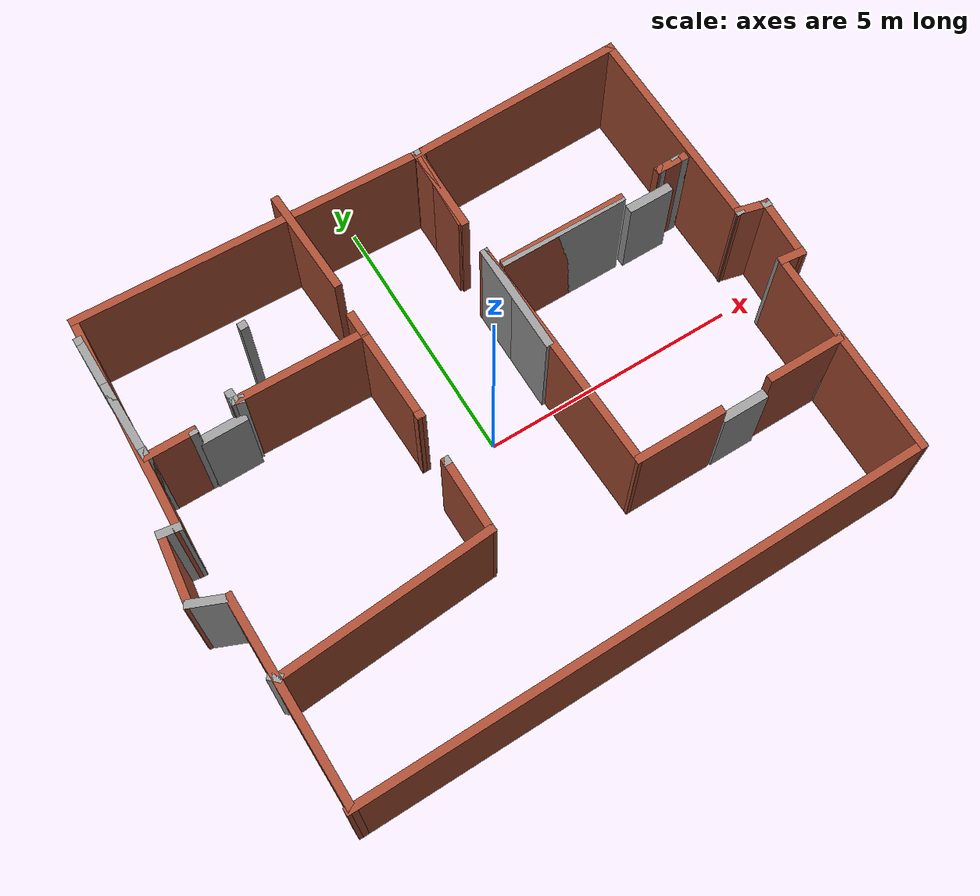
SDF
<?xml version='1.0'?>
<sdf version='1.7'>
  <model name='my_floor'>
    <pose>-0.059834 0.213787 0 0 -0 0</pose>
    <link name='Door_0'>
      <collision name='Door_0_Collision'>
        <geometry>
          <box>
            <size>0.9 0.17 2</size>
          </box>
        </geometry>
        <pose>0 0 1 0 -0 0</pose>
      </collision>
      <visual name='Door_0_Visual'>
        <pose>0 0 1 0 -0 0</pose>
        <geometry>
          <box>
            <size>0.9 0.17 2</size>
          </box>
        </geometry>
        <material>
          <script>
            <uri>file://media/materials/scripts/gazebo.material</uri>
            <name>Gazebo/Grey</name>
          </script>
        </material>
      </visual>
      <pose>-4.04199 1.77907 0 0 -0 0</pose>
    </link>
    <link name='Door_1'>
      <collision name='Door_1_Collision'>
        <geometry>
          <box>
            <size>0.9 0.17 2</size>
          </box>
        </geometry>
        <pose>0 0 1 0 -0 0</pose>
      </collision>
      <visual name='Door_1_Visual'>
        <pose>0 0 1 0 -0 0</pose>
        <geometry>
          <box>
            <size>0.9 0.17 2</size>
          </box>
        </geometry>
        <material>
          <script>
            <uri>file://media/materials/scripts/gazebo.material</uri>
            <name>Gazebo/Grey</name>
          </script>
        </material>
      </visual>
      <pose>3.60411 -2.46876 0 0 -0 0</pose>
    </link>
    <link name='Door_2'>
      <collision name='Door_2_Collision'>
        <geometry>
          <box>
            <size>0.9 0.17 2</size>
          </box>
        </geometry>
        <pose>0 0 1 0 -0 0</pose>
      </collision>
      <visual name='Door_2_Visual'>
        <pose>0 0 1 0 -0 0</pose>
        <geometry>
          <box>
            <size>0.9 0.17 2</size>
          </box>
        </geometry>
        <material>
          <script>
            <uri>file://media/materials/scripts/gazebo.material</uri>
            <name>Gazebo/Grey</name>
          </script>
        </material>
      </visual>
      <pose>4.49413 1.69816 0 0 -0 0</pose>
    </link>
    <link name='Wall_0'>
      <collision name='Wall_0_Collision'>
        <geometry>
          <box>
            <size>1.5 0.15 2.5</size>
          </box>
        </geometry>
        <pose>0 0 1.25 0 -0 0</pose>
      </collision>
      <visual name='Wall_0_Visual'>
        <pose>0 0 1.25 0 -0 0</pose>
        <geometry>
          <box>
            <size>1.5 0.15 2.5</size>
          </box>
        </geometry>
        <material>
          <script>
            <uri>file://media/materials/scripts/gazebo.material</uri>
            <name>Gazebo/Grey</name>
          </script>
          <ambient>1 1 1 1</ambient>
        </material>
        <meta>
          <layer>0</layer>
        </meta>
      </visual>
      <pose>-5.37703 2.56047 0 0 -0 -1.5708</pose>
    </link>
    <link name='Wall_1'>
      <collision name='Wall_1_Collision'>
        <geometry>
          <box>
            <size>2.5 0.15 2.5</size>
          </box>
        </geometry>
        <pose>0 0 1.25 0 -0 0</pose>
      </collision>
      <visual name='Wall_1_Visual'>
        <pose>0 0 1.25 0 -0 0</pose>
        <geometry>
          <box>
            <size>2.5 0.15 2.5</size>
          </box>
        </geometry>
        <material>
          <script>
            <uri>file://media/materials/scripts/gazebo.material</uri>
            <name>Gazebo/Grey</name>
          </script>
          <ambient>1 1 1 1</ambient>
        </material>
        <meta>
          <layer>0</layer>
        </meta>
      </visual>
      <pose>-5.37703 3.06047 0 0 -0 1.5708</pose>
    </link>
    <link name='Wall_11'>
      <collision name='Wall_11_Collision'>
        <geometry>
          <box>
            <size>4.15531 0.15 2.5</size>
          </box>
        </geometry>
        <pose>0 0 1.25 0 -0 0</pose>
      </collision>
      <visual name='Wall_11_Visual'>
        <pose>0 0 1.25 0 -0 0</pose>
        <geometry>
          <box>
            <size>4.15531 0.15 2.5</size>
          </box>
        </geometry>
        <material>
          <script>
            <uri>file://media/materials/scripts/gazebo.material</uri>
            <name>Gazebo/Bricks</name>
          </script>
          <ambient>1 1 1 1</ambient>
        </material>
        <meta>
          <layer>0</layer>
        </meta>
      </visual>
      <pose>5.44484 2.44659 0 0 -0 1.5809</pose>
    </link>
    <link name='Wall_12'>
      <collision name='Wall_12_Collision'>
        <geometry>
          <box>
            <size>4.27726 0.15 2.5</size>
          </box>
        </geometry>
        <pose>0 0 1.25 0 -0 0</pose>
      </collision>
      <visual name='Wall_12_Visual'>
        <pose>0 0 1.25 0 -0 0</pose>
        <geometry>
          <box>
            <size>4.27726 0.15 2.5</size>
          </box>
        </geometry>
        <material>
          <script>
            <uri>file://media/materials/scripts/gazebo.material</uri>
            <name>Gazebo/Bricks</name>
          </script>
          <ambient>1 1 1 1</ambient>
        </material>
        <meta>
          <layer>0</layer>
        </meta>
      </visual>
      <pose>3.36138 4.40868 0 0 -0 -3.12199</pose>
    </link>
    <link name='Wall_13'>
      <collision name='Wall_13_Collision'>
        <geometry>
          <box>
            <size>0.16 0.15 2.5</size>
          </box>
        </geometry>
        <pose>0 0 1.25 0 -0 0</pose>
      </collision>
      <visual name='Wall_13_Visual'>
        <pose>0 0 1.25 0 -0 0</pose>
        <geometry>
          <box>
            <size>0.16 0.15 2.5</size>
          </box>
        </geometry>
        <material>
          <script>
            <uri>file://media/materials/scripts/gazebo.material</uri>
            <name>Gazebo/Grey</name>
          </script>
          <ambient>1 1 1 1</ambient>
        </material>
        <meta>
          <layer>0</layer>
        </meta>
      </visual>
      <pose>1.30314 4.36823 0 0 -0 0</pose>
    </link>
    <link name='Wall_14'>
      <collision name='Wall_14_Collision'>
        <geometry>
          <box>
            <size>1.72806 0.15 2.5</size>
          </box>
        </geometry>
        <pose>0 0 1.25 0 -0 0</pose>
      </collision>
      <visual name='Wall_14_Visual'>
        <pose>0 0 1.25 0 -0 0</pose>
        <geometry>
          <box>
            <size>1.72806 0.15 2.5</size>
          </box>
        </geometry>
        <material>
          <script>
            <uri>file://media/materials/scripts/gazebo.material</uri>
            <name>Gazebo/Bricks</name>
          </script>
          <ambient>1 1 1 1</ambient>
        </material>
        <meta>
          <layer>0</layer>
        </meta>
      </visual>
      <pose>1.30314 3.57934 0 0 -0 -1.57713</pose>
    </link>
    <link name='Wall_16'>
      <collision name='Wall_16_Collision'>
        <geometry>
          <box>
            <size>2.13274 0.15 2.5</size>
          </box>
        </geometry>
        <pose>0 0 1.25 0 -0 0</pose>
      </collision>
      <visual name='Wall_16_Visual'>
        <pose>0 0 1.25 0 -0 0</pose>
        <geometry>
          <box>
            <size>2.13274 0.15 2.5</size>
          </box>
        </geometry>
        <material>
          <script>
            <uri>file://media/materials/scripts/gazebo.material</uri>
            <name>Gazebo/Grey</name>
          </script>
          <ambient>1 1 1 1</ambient>
        </material>
        <meta>
          <layer>0</layer>
        </meta>
      </visual>
      <pose>1.29814 1.0711 0 0 -0 -1.5708</pose>
    </link>
    <link name='Wall_17'>
      <collision name='Wall_17_Collision'>
        <geometry>
          <box>
            <size>2.13232 0.15 2.5</size>
          </box>
        </geometry>
        <pose>0 0 1.25 0 -0 0</pose>
      </collision>
      <visual name='Wall_17_Visual'>
        <pose>0 0 1.25 0 -0 0</pose>
        <geometry>
          <box>
            <size>2.13232 0.15 2.5</size>
          </box>
        </geometry>
        <material>
          <script>
            <uri>file://media/materials/scripts/gazebo.material</uri>
            <name>Gazebo/Grey</name>
          </script>
          <ambient>1 1 1 1</ambient>
        </material>
        <meta>
          <layer>0</layer>
        </meta>
      </visual>
      <pose>1.29814 1.0711 0 0 -0 1.5708</pose>
    </link>
    <link name='Wall_19'>
      <collision name='Wall_19_Collision'>
        <geometry>
          <box>
            <size>2.5 0.15 2.5</size>
          </box>
        </geometry>
        <pose>0 0 1.25 0 -0 0</pose>
      </collision>
      <visual name='Wall_19_Visual'>
        <pose>0 0 1.25 0 -0 0</pose>
        <geometry>
          <box>
            <size>2.5 0.15 2.5</size>
          </box>
        </geometry>
        <material>
          <script>
            <uri>file://media/materials/scripts/gazebo.material</uri>
            <name>Gazebo/Grey</name>
          </script>
          <ambient>1 1 1 1</ambient>
        </material>
        <meta>
          <layer>0</layer>
        </meta>
      </visual>
      <pose>2.67184 1.73862 0 0 -0 3.14159</pose>
    </link>
    <link name='Wall_2'>
      <collision name='Wall_2_Collision'>
        <geometry>
          <box>
            <size>0.15 0.15 2.5</size>
          </box>
        </geometry>
        <pose>0 0 1.25 0 -0 0</pose>
      </collision>
      <visual name='Wall_2_Visual'>
        <pose>0 0 1.25 0 -0 0</pose>
        <geometry>
          <box>
            <size>0.15 0.15 2.5</size>
          </box>
        </geometry>
        <material>
          <script>
            <uri>file://media/materials/scripts/gazebo.material</uri>
            <name>Gazebo/Grey</name>
          </script>
          <ambient>1 1 1 1</ambient>
        </material>
        <meta>
          <layer>0</layer>
        </meta>
      </visual>
      <pose>-5.37703 4.23547 0 0 -0 0</pose>
    </link>
    <link name='Wall_20'>
      <collision name='Wall_20_Collision'>
        <geometry>
          <box>
            <size>2.5 0.15 2.5</size>
          </box>
        </geometry>
        <pose>0 0 1.25 0 -0 0</pose>
      </collision>
      <visual name='Wall_20_Visual'>
        <pose>0 0 1.25 0 -0 0</pose>
        <geometry>
          <box>
            <size>2.5 0.15 2.5</size>
          </box>
        </geometry>
        <material>
          <script>
            <uri>file://media/materials/scripts/gazebo.material</uri>
            <name>Gazebo/Bricks</name>
          </script>
          <ambient>1 1 1 1</ambient>
        </material>
        <meta>
          <layer>0</layer>
        </meta>
      </visual>
      <pose>2.67184 1.73862 0 0 -0 0</pose>
    </link>
    <link name='Wall_22'>
      <collision name='Wall_22_Collision'>
        <geometry>
          <box>
            <size>0.3 0.15 2.5</size>
          </box>
        </geometry>
        <pose>0 0 1.25 0 -0 0</pose>
      </collision>
      <visual name='Wall_22_Visual'>
        <pose>0 0 1.25 0 -0 0</pose>
        <geometry>
          <box>
            <size>0.3 0.15 2.5</size>
          </box>
        </geometry>
        <material>
          <script>
            <uri>file://media/materials/scripts/gazebo.material</uri>
            <name>Gazebo/Grey</name>
          </script>
          <ambient>1 1 1 1</ambient>
        </material>
        <meta>
          <layer>0</layer>
        </meta>
      </visual>
      <pose>5.18779 1.85998 0 0 -0 3.14159</pose>
    </link>
    <link name='Wall_23'>
      <collision name='Wall_23_Collision'>
        <geometry>
          <box>
            <size>0.5 0.15 2.5</size>
          </box>
        </geometry>
        <pose>0 0 1.25 0 -0 0</pose>
      </collision>
      <visual name='Wall_23_Visual'>
        <pose>0 0 1.25 0 -0 0</pose>
        <geometry>
          <box>
            <size>0.5 0.15 2.5</size>
          </box>
        </geometry>
        <material>
          <script>
            <uri>file://media/materials/scripts/gazebo.material</uri>
            <name>Gazebo/Bricks</name>
          </script>
          <ambient>1 1 1 1</ambient>
        </material>
        <meta>
          <layer>0</layer>
        </meta>
      </visual>
      <pose>4.93779 1.85998 0 0 -0 3.14159</pose>
    </link>
    <link name='Wall_24'>
      <collision name='Wall_24_Collision'>
        <geometry>
          <box>
            <size>0.16 0.15 2.5</size>
          </box>
        </geometry>
        <pose>0 0 1.25 0 -0 0</pose>
      </collision>
      <visual name='Wall_24_Visual'>
        <pose>0 0 1.25 0 -0 0</pose>
        <geometry>
          <box>
            <size>0.16 0.15 2.5</size>
          </box>
        </geometry>
        <material>
          <script>
            <uri>file://media/materials/scripts/gazebo.material</uri>
            <name>Gazebo/Grey</name>
          </script>
          <ambient>1 1 1 1</ambient>
        </material>
        <meta>
          <layer>0</layer>
        </meta>
      </visual>
      <pose>4.76779 1.85998 0 0 -0 0</pose>
    </link>
    <link name='Wall_25'>
      <collision name='Wall_25_Collision'>
        <geometry>
          <box>
            <size>0.16 0.15 2.5</size>
          </box>
        </geometry>
        <pose>0 0 1.25 0 -0 0</pose>
      </collision>
      <visual name='Wall_25_Visual'>
        <pose>0 0 1.25 0 -0 0</pose>
        <geometry>
          <box>
            <size>0.16 0.15 2.5</size>
          </box>
        </geometry>
        <material>
          <script>
            <uri>file://media/materials/scripts/gazebo.material</uri>
            <name>Gazebo/Bricks</name>
          </script>
          <ambient>1 1 1 1</ambient>
        </material>
        <meta>
          <layer>0</layer>
        </meta>
      </visual>
      <pose>4.77779 1.85998 0 0 -0 0</pose>
    </link>
    <link name='Wall_27'>
      <collision name='Wall_27_Collision'>
        <geometry>
          <box>
            <size>0.3 0.15 2.5</size>
          </box>
        </geometry>
        <pose>0 0 1.25 0 -0 0</pose>
      </collision>
      <visual name='Wall_27_Visual'>
        <pose>0 0 1.25 0 -0 0</pose>
        <geometry>
          <box>
            <size>0.3 0.15 2.5</size>
          </box>
        </geometry>
        <material>
          <script>
            <uri>file://media/materials/scripts/gazebo.material</uri>
            <name>Gazebo/Grey</name>
          </script>
          <ambient>1 1 1 1</ambient>
        </material>
        <meta>
          <layer>0</layer>
        </meta>
      </visual>
      <pose>-3.67789 1.97544 0 0 -0 1.5708</pose>
    </link>
    <link name='Wall_29'>
      <collision name='Wall_29_Collision'>
        <geometry>
          <box>
            <size>0.25 0.15 2.5</size>
          </box>
        </geometry>
        <pose>0 0 1.25 0 -0 0</pose>
      </collision>
      <visual name='Wall_29_Visual'>
        <pose>0 0 1.25 0 -0 0</pose>
        <geometry>
          <box>
            <size>0.25 0.15 2.5</size>
          </box>
        </geometry>
        <material>
          <script>
            <uri>file://media/materials/scripts/gazebo.material</uri>
            <name>Gazebo/Grey</name>
          </script>
          <ambient>1 1 1 1</ambient>
        </material>
        <meta>
          <layer>0</layer>
        </meta>
      </visual>
      <pose>-3.6296 1.8875 0 0 -0 -0.261799</pose>
    </link>
    <link name='Wall_31'>
      <collision name='Wall_31_Collision'>
        <geometry>
          <box>
            <size>0.16 0.15 2.5</size>
          </box>
        </geometry>
        <pose>0 0 1.25 0 -0 0</pose>
      </collision>
      <visual name='Wall_31_Visual'>
        <pose>0 0 1.25 0 -0 0</pose>
        <geometry>
          <box>
            <size>0.16 0.15 2.5</size>
          </box>
        </geometry>
        <material>
          <script>
            <uri>file://media/materials/scripts/gazebo.material</uri>
            <name>Gazebo/Grey</name>
          </script>
          <ambient>1 1 1 1</ambient>
        </material>
        <meta>
          <layer>0</layer>
        </meta>
      </visual>
      <pose>-2.9013 3.04369 0 0 -0 0</pose>
    </link>
    <link name='Wall_34'>
      <collision name='Wall_34_Collision'>
        <geometry>
          <box>
            <size>2.57767 0.15 2.5</size>
          </box>
        </geometry>
        <pose>0 0 1.25 0 -0 0</pose>
      </collision>
      <visual name='Wall_34_Visual'>
        <pose>0 0 1.25 0 -0 0</pose>
        <geometry>
          <box>
            <size>2.57767 0.15 2.5</size>
          </box>
        </geometry>
        <material>
          <script>
            <uri>file://media/materials/scripts/gazebo.material</uri>
            <name>Gazebo/Bricks</name>
          </script>
          <ambient>1 1 1 1</ambient>
        </material>
        <meta>
          <layer>0</layer>
        </meta>
      </visual>
      <pose>-2.46423 1.88021 0 0 -0 3.12493</pose>
    </link>
    <link name='Wall_35'>
      <collision name='Wall_35_Collision'>
        <geometry>
          <box>
            <size>0.16 0.15 2.5</size>
          </box>
        </geometry>
        <pose>0 0 1.25 0 -0 0</pose>
      </collision>
      <visual name='Wall_35_Visual'>
        <pose>0 0 1.25 0 -0 0</pose>
        <geometry>
          <box>
            <size>0.16 0.15 2.5</size>
          </box>
        </geometry>
        <material>
          <script>
            <uri>file://media/materials/scripts/gazebo.material</uri>
            <name>Gazebo/Grey</name>
          </script>
          <ambient>1 1 1 1</ambient>
        </material>
        <meta>
          <layer>0</layer>
        </meta>
      </visual>
      <pose>-3.67289 1.90044 0 0 -0 0</pose>
    </link>
    <link name='Wall_36'>
      <collision name='Wall_36_Collision'>
        <geometry>
          <box>
            <size>0.16 0.15 2.5</size>
          </box>
        </geometry>
        <pose>0 0 1.25 0 -0 0</pose>
      </collision>
      <visual name='Wall_36_Visual'>
        <pose>0 0 1.25 0 -0 0</pose>
        <geometry>
          <box>
            <size>0.16 0.15 2.5</size>
          </box>
        </geometry>
        <material>
          <script>
            <uri>file://media/materials/scripts/gazebo.material</uri>
            <name>Gazebo/Grey</name>
          </script>
          <ambient>1 1 1 1</ambient>
        </material>
        <meta>
          <layer>0</layer>
        </meta>
      </visual>
      <pose>-3.67289 1.90044 0 0 -0 3.14159</pose>
    </link>
    <link name='Wall_38'>
      <collision name='Wall_38_Collision'>
        <geometry>
          <box>
            <size>4 0.15 2.5</size>
          </box>
        </geometry>
        <pose>0 0 1.25 0 -0 0</pose>
      </collision>
      <visual name='Wall_38_Visual'>
        <pose>0 0 1.25 0 -0 0</pose>
        <geometry>
          <box>
            <size>4 0.15 2.5</size>
          </box>
        </geometry>
        <material>
          <script>
            <uri>file://media/materials/scripts/gazebo.material</uri>
            <name>Gazebo/Bricks</name>
          </script>
          <ambient>1 1 1 1</ambient>
        </material>
        <meta>
          <layer>0</layer>
        </meta>
      </visual>
      <pose>-5.33657 -2.93065 0 0 -0 1.5708</pose>
    </link>
    <link name='Wall_39'>
      <collision name='Wall_39_Collision'>
        <geometry>
          <box>
            <size>0.763585 0.15 2.5</size>
          </box>
        </geometry>
        <pose>0 0 1.25 0 -0 0</pose>
      </collision>
      <visual name='Wall_39_Visual'>
        <pose>0 0 1.25 0 -0 0</pose>
        <geometry>
          <box>
            <size>0.763585 0.15 2.5</size>
          </box>
        </geometry>
        <material>
          <script>
            <uri>file://media/materials/scripts/gazebo.material</uri>
            <name>Gazebo/Grey</name>
          </script>
          <ambient>1 1 1 1</ambient>
        </material>
        <meta>
          <layer>0</layer>
        </meta>
      </visual>
      <pose>-5.66022 -0.887638 0 0 -0 2.74677</pose>
    </link>
    <link name='Wall_4'>
      <collision name='Wall_4_Collision'>
        <geometry>
          <box>
            <size>11.0338 0.15 2.5</size>
          </box>
        </geometry>
        <pose>0 0 1.25 0 -0 0</pose>
      </collision>
      <visual name='Wall_4_Visual'>
        <pose>0 0 1.25 0 -0 0</pose>
        <geometry>
          <box>
            <size>11.0338 0.15 2.5</size>
          </box>
        </geometry>
        <material>
          <script>
            <uri>file://media/materials/scripts/gazebo.material</uri>
            <name>Gazebo/Bricks</name>
          </script>
          <ambient>1 1 1 1</ambient>
        </material>
        <meta>
          <layer>0</layer>
        </meta>
      </visual>
      <pose>0.064247 -4.77473 0 0 -0 0.014869</pose>
    </link>
    <link name='Wall_40'>
      <collision name='Wall_40_Collision'>
        <geometry>
          <box>
            <size>1.41452 0.15 2.5</size>
          </box>
        </geometry>
        <pose>0 0 1.25 0 -0 0</pose>
      </collision>
      <visual name='Wall_40_Visual'>
        <pose>0 0 1.25 0 -0 0</pose>
        <geometry>
          <box>
            <size>1.41452 0.15 2.5</size>
          </box>
        </geometry>
        <material>
          <script>
            <uri>file://media/materials/scripts/gazebo.material</uri>
            <name>Gazebo/Bricks</name>
          </script>
          <ambient>1 1 1 1</ambient>
        </material>
        <meta>
          <layer>0</layer>
        </meta>
      </visual>
      <pose>-5.8625 -0.14257 0 0 -0 1.44247</pose>
    </link>
    <link name='Wall_41'>
      <collision name='Wall_41_Collision'>
        <geometry>
          <box>
            <size>0.436064 0.15 2.5</size>
          </box>
        </geometry>
        <pose>0 0 1.25 0 -0 0</pose>
      </collision>
      <visual name='Wall_41_Visual'>
        <pose>0 0 1.25 0 -0 0</pose>
        <geometry>
          <box>
            <size>0.436064 0.15 2.5</size>
          </box>
        </geometry>
        <material>
          <script>
            <uri>file://media/materials/scripts/gazebo.material</uri>
            <name>Gazebo/Grey</name>
          </script>
          <ambient>1 1 1 1</ambient>
        </material>
        <meta>
          <layer>0</layer>
        </meta>
      </visual>
      <pose>-5.63999 0.464264 0 0 -0 -0.141897</pose>
    </link>
    <link name='Wall_42'>
      <collision name='Wall_42_Collision'>
        <geometry>
          <box>
            <size>4.32183 0.15 2.5</size>
          </box>
        </geometry>
        <pose>0 0 1.25 0 -0 0</pose>
      </collision>
      <visual name='Wall_42_Visual'>
        <pose>0 0 1.25 0 -0 0</pose>
        <geometry>
          <box>
            <size>4.32183 0.15 2.5</size>
          </box>
        </geometry>
        <material>
          <script>
            <uri>file://media/materials/scripts/gazebo.material</uri>
            <name>Gazebo/Bricks</name>
          </script>
          <ambient>1 1 1 1</ambient>
        </material>
        <meta>
          <layer>0</layer>
        </meta>
      </visual>
      <pose>-5.39726 2.5275 0 0 -0 1.52229</pose>
    </link>
    <link name='Wall_43'>
      <collision name='Wall_43_Collision'>
        <geometry>
          <box>
            <size>6.82958 0.15 2.5</size>
          </box>
        </geometry>
        <pose>0 0 1.25 0 -0 0</pose>
      </collision>
      <visual name='Wall_43_Visual'>
        <pose>0 0 1.25 0 -0 0</pose>
        <geometry>
          <box>
            <size>6.82958 0.15 2.5</size>
          </box>
        </geometry>
        <material>
          <script>
            <uri>file://media/materials/scripts/gazebo.material</uri>
            <name>Gazebo/Bricks</name>
          </script>
          <ambient>1 1 1 1</ambient>
        </material>
        <meta>
          <layer>0</layer>
        </meta>
      </visual>
      <pose>-1.95853 4.48959 0 0 -0 -0.036348</pose>
    </link>
    <link name='Wall_44'>
      <collision name='Wall_44_Collision'>
        <geometry>
          <box>
            <size>1.68944 0.15 2.5</size>
          </box>
        </geometry>
        <pose>0 0 1.25 0 -0 0</pose>
      </collision>
      <visual name='Wall_44_Visual'>
        <pose>0 0 1.25 0 -0 0</pose>
        <geometry>
          <box>
            <size>1.68944 0.15 2.5</size>
          </box>
        </geometry>
        <material>
          <script>
            <uri>file://media/materials/scripts/gazebo.material</uri>
            <name>Gazebo/Bricks</name>
          </script>
          <ambient>1 1 1 1</ambient>
        </material>
        <meta>
          <layer>0</layer>
        </meta>
      </visual>
      <pose>1.29814 3.59957 0 0 -0 -1.62338</pose>
    </link>
    <link name='Wall_45'>
      <collision name='Wall_45_Collision'>
        <geometry>
          <box>
            <size>0.15 0.15 2.5</size>
          </box>
        </geometry>
        <pose>0 0 1.25 0 -0 0</pose>
      </collision>
      <visual name='Wall_45_Visual'>
        <pose>0 0 1.25 0 -0 0</pose>
        <geometry>
          <box>
            <size>0.15 0.15 2.5</size>
          </box>
        </geometry>
        <material>
          <script>
            <uri>file://media/materials/scripts/gazebo.material</uri>
            <name>Gazebo/Grey</name>
          </script>
          <ambient>1 1 1 1</ambient>
        </material>
        <meta>
          <layer>0</layer>
        </meta>
      </visual>
      <pose>1.29814 2.83092 0 0 -0 0</pose>
    </link>
    <link name='Wall_47'>
      <collision name='Wall_47_Collision'>
        <geometry>
          <box>
            <size>0.15 0.15 2.5</size>
          </box>
        </geometry>
        <pose>0 0 1.25 0 -0 0</pose>
      </collision>
      <visual name='Wall_47_Visual'>
        <pose>0 0 1.25 0 -0 0</pose>
        <geometry>
          <box>
            <size>0.15 0.15 2.5</size>
          </box>
        </geometry>
        <material>
          <script>
            <uri>file://media/materials/scripts/gazebo.material</uri>
            <name>Gazebo/Grey</name>
          </script>
          <ambient>1 1 1 1</ambient>
        </material>
        <meta>
          <layer>0</layer>
        </meta>
      </visual>
      <pose>-5.37703 1.88547 0 0 -0 0</pose>
    </link>
    <link name='Wall_48'>
      <collision name='Wall_48_Collision'>
        <geometry>
          <box>
            <size>0.15 0.15 2.5</size>
          </box>
        </geometry>
        <pose>0 0 1.25 0 -0 0</pose>
      </collision>
      <visual name='Wall_48_Visual'>
        <pose>0 0 1.25 0 -0 0</pose>
        <geometry>
          <box>
            <size>0.15 0.15 2.5</size>
          </box>
        </geometry>
        <material>
          <script>
            <uri>file://media/materials/scripts/gazebo.material</uri>
            <name>Gazebo/Grey</name>
          </script>
          <ambient>1 1 1 1</ambient>
        </material>
        <meta>
          <layer>0</layer>
        </meta>
      </visual>
      <pose>-5.37703 1.88547 0 0 -0 0</pose>
    </link>
    <link name='Wall_49'>
      <collision name='Wall_49_Collision'>
        <geometry>
          <box>
            <size>0.16 0.15 2.5</size>
          </box>
        </geometry>
        <pose>0 0 1.25 0 -0 0</pose>
      </collision>
      <visual name='Wall_49_Visual'>
        <pose>0 0 1.25 0 -0 0</pose>
        <geometry>
          <box>
            <size>0.16 0.15 2.5</size>
          </box>
        </geometry>
        <material>
          <script>
            <uri>file://media/materials/scripts/gazebo.material</uri>
            <name>Gazebo/Grey</name>
          </script>
          <ambient>1 1 1 1</ambient>
        </material>
        <meta>
          <layer>0</layer>
        </meta>
      </visual>
      <pose>-5.37203 1.88547 0 0 -0 0</pose>
    </link>
    <link name='Wall_5'>
      <collision name='Wall_5_Collision'>
        <geometry>
          <box>
            <size>4.11485 0.15 2.5</size>
          </box>
        </geometry>
        <pose>0 0 1.25 0 -0 0</pose>
      </collision>
      <visual name='Wall_5_Visual'>
        <pose>0 0 1.25 0 -0 0</pose>
        <geometry>
          <box>
            <size>4.11485 0.15 2.5</size>
          </box>
        </geometry>
        <material>
          <script>
            <uri>file://media/materials/scripts/gazebo.material</uri>
            <name>Gazebo/Bricks</name>
          </script>
          <ambient>1 1 1 1</ambient>
        </material>
        <meta>
          <layer>0</layer>
        </meta>
      </visual>
      <pose>5.52575 -2.7115 0 0 -0 1.56059</pose>
    </link>
    <link name='Wall_50'>
      <collision name='Wall_50_Collision'>
        <geometry>
          <box>
            <size>0.25 0.15 2.5</size>
          </box>
        </geometry>
        <pose>0 0 1.25 0 -0 0</pose>
      </collision>
      <visual name='Wall_50_Visual'>
        <pose>0 0 1.25 0 -0 0</pose>
        <geometry>
          <box>
            <size>0.25 0.15 2.5</size>
          </box>
        </geometry>
        <material>
          <script>
            <uri>file://media/materials/scripts/gazebo.material</uri>
            <name>Gazebo/Grey</name>
          </script>
          <ambient>1 1 1 1</ambient>
        </material>
        <meta>
          <layer>0</layer>
        </meta>
      </visual>
      <pose>-5.36703 1.83547 0 0 -0 -1.5708</pose>
    </link>
    <link name='Wall_51'>
      <collision name='Wall_51_Collision'>
        <geometry>
          <box>
            <size>1 0.15 2.5</size>
          </box>
        </geometry>
        <pose>0 0 1.25 0 -0 0</pose>
      </collision>
      <visual name='Wall_51_Visual'>
        <pose>0 0 1.25 0 -0 0</pose>
        <geometry>
          <box>
            <size>1 0.15 2.5</size>
          </box>
        </geometry>
        <material>
          <script>
            <uri>file://media/materials/scripts/gazebo.material</uri>
            <name>Gazebo/Bricks</name>
          </script>
          <ambient>1 1 1 1</ambient>
        </material>
        <meta>
          <layer>0</layer>
        </meta>
      </visual>
      <pose>-4.94203 1.78547 0 0 -0 0</pose>
    </link>
    <link name='Wall_52'>
      <collision name='Wall_52_Collision'>
        <geometry>
          <box>
            <size>0.16 0.15 2.5</size>
          </box>
        </geometry>
        <pose>0 0 1.25 0 -0 0</pose>
      </collision>
      <visual name='Wall_52_Visual'>
        <pose>0 0 1.25 0 -0 0</pose>
        <geometry>
          <box>
            <size>0.16 0.15 2.5</size>
          </box>
        </geometry>
        <material>
          <script>
            <uri>file://media/materials/scripts/gazebo.material</uri>
            <name>Gazebo/Grey</name>
          </script>
          <ambient>1 1 1 1</ambient>
        </material>
        <meta>
          <layer>0</layer>
        </meta>
      </visual>
      <pose>-4.51203 1.78547 0 0 -0 0</pose>
    </link>
    <link name='Wall_54'>
      <collision name='Wall_54_Collision'>
        <geometry>
          <box>
            <size>0.25 0.15 2.5</size>
          </box>
        </geometry>
        <pose>0 0 1.25 0 -0 0</pose>
      </collision>
      <visual name='Wall_54_Visual'>
        <pose>0 0 1.25 0 -0 0</pose>
        <geometry>
          <box>
            <size>0.25 0.15 2.5</size>
          </box>
        </geometry>
        <material>
          <script>
            <uri>file://media/materials/scripts/gazebo.material</uri>
            <name>Gazebo/Grey</name>
          </script>
          <ambient>1 1 1 1</ambient>
        </material>
        <meta>
          <layer>0</layer>
        </meta>
      </visual>
      <pose>-5.34167 -2.50412 0 0 -0 -0.785398</pose>
    </link>
    <link name='Wall_55'>
      <collision name='Wall_55_Collision'>
        <geometry>
          <box>
            <size>4.21785 0.15 2.5</size>
          </box>
        </geometry>
        <pose>0 0 1.25 0 -0 0</pose>
      </collision>
      <visual name='Wall_55_Visual'>
        <pose>0 0 1.25 0 -0 0</pose>
        <geometry>
          <box>
            <size>4.21785 0.15 2.5</size>
          </box>
        </geometry>
        <material>
          <script>
            <uri>file://media/materials/scripts/gazebo.material</uri>
            <name>Gazebo/Bricks</name>
          </script>
          <ambient>1 1 1 1</ambient>
        </material>
        <meta>
          <layer>0</layer>
        </meta>
      </visual>
      <pose>-3.27844 -2.38275 0 0 -0 0.07713</pose>
    </link>
    <link name='Wall_56'>
      <collision name='Wall_56_Collision'>
        <geometry>
          <box>
            <size>1.52549 0.15 2.5</size>
          </box>
        </geometry>
        <pose>0 0 1.25 0 -0 0</pose>
      </collision>
      <visual name='Wall_56_Visual'>
        <pose>0 0 1.25 0 -0 0</pose>
        <geometry>
          <box>
            <size>1.52549 0.15 2.5</size>
          </box>
        </geometry>
        <material>
          <script>
            <uri>file://media/materials/scripts/gazebo.material</uri>
            <name>Gazebo/Bricks</name>
          </script>
          <ambient>1 1 1 1</ambient>
        </material>
        <meta>
          <layer>0</layer>
        </meta>
      </visual>
      <pose>-1.25056 -1.53829 0 0 -0 1.5708</pose>
    </link>
    <link name='Wall_57'>
      <collision name='Wall_57_Collision'>
        <geometry>
          <box>
            <size>0.15 0.15 2.5</size>
          </box>
        </geometry>
        <pose>0 0 1.25 0 -0 0</pose>
      </collision>
      <visual name='Wall_57_Visual'>
        <pose>0 0 1.25 0 -0 0</pose>
        <geometry>
          <box>
            <size>0.15 0.15 2.5</size>
          </box>
        </geometry>
        <material>
          <script>
            <uri>file://media/materials/scripts/gazebo.material</uri>
            <name>Gazebo/Grey</name>
          </script>
          <ambient>1 1 1 1</ambient>
        </material>
        <meta>
          <layer>0</layer>
        </meta>
      </visual>
      <pose>-1.25056 -0.850542 0 0 -0 0</pose>
    </link>
    <link name='Wall_59'>
      <collision name='Wall_59_Collision'>
        <geometry>
          <box>
            <size>0.16 0.15 2.5</size>
          </box>
        </geometry>
        <pose>0 0 1.25 0 -0 0</pose>
      </collision>
      <visual name='Wall_59_Visual'>
        <pose>0 0 1.25 0 -0 0</pose>
        <geometry>
          <box>
            <size>0.16 0.15 2.5</size>
          </box>
        </geometry>
        <material>
          <script>
            <uri>file://media/materials/scripts/gazebo.material</uri>
            <name>Gazebo/Bricks</name>
          </script>
          <ambient>1 1 1 1</ambient>
        </material>
        <meta>
          <layer>0</layer>
        </meta>
      </visual>
      <pose>-1.2051 0.079936 0 0 -0 0</pose>
    </link>
    <link name='Wall_6'>
      <collision name='Wall_6_Collision'>
        <geometry>
          <box>
            <size>0.16 0.15 2.5</size>
          </box>
        </geometry>
        <pose>0 0 1.25 0 -0 0</pose>
      </collision>
      <visual name='Wall_6_Visual'>
        <pose>0 0 1.25 0 -0 0</pose>
        <geometry>
          <box>
            <size>0.16 0.15 2.5</size>
          </box>
        </geometry>
        <material>
          <script>
            <uri>file://media/materials/scripts/gazebo.material</uri>
            <name>Gazebo/Grey</name>
          </script>
          <ambient>1 1 1 1</ambient>
        </material>
        <meta>
          <layer>0</layer>
        </meta>
      </visual>
      <pose>5.55098 -0.729176 0 0 -0 0</pose>
    </link>
    <link name='Wall_60'>
      <collision name='Wall_60_Collision'>
        <geometry>
          <box>
            <size>2.29474 0.15 2.5</size>
          </box>
        </geometry>
        <pose>0 0 1.25 0 -0 0</pose>
      </collision>
      <visual name='Wall_60_Visual'>
        <pose>0 0 1.25 0 -0 0</pose>
        <geometry>
          <box>
            <size>2.29474 0.15 2.5</size>
          </box>
        </geometry>
        <material>
          <script>
            <uri>file://media/materials/scripts/gazebo.material</uri>
            <name>Gazebo/Bricks</name>
          </script>
          <ambient>1 1 1 1</ambient>
        </material>
        <meta>
          <layer>0</layer>
        </meta>
      </visual>
      <pose>-1.22533 1.15201 0 0 -0 1.59432</pose>
    </link>
    <link name='Wall_62'>
      <collision name='Wall_62_Collision'>
        <geometry>
          <box>
            <size>2.09355 0.15 2.5</size>
          </box>
        </geometry>
        <pose>0 0 1.25 0 -0 0</pose>
      </collision>
      <visual name='Wall_62_Visual'>
        <pose>0 0 1.25 0 -0 0</pose>
        <geometry>
          <box>
            <size>2.09355 0.15 2.5</size>
          </box>
        </geometry>
        <material>
          <script>
            <uri>file://media/materials/scripts/gazebo.material</uri>
            <name>Gazebo/Bricks</name>
          </script>
          <ambient>1 1 1 1</ambient>
        </material>
        <meta>
          <layer>0</layer>
        </meta>
      </visual>
      <pose>-1.2101 3.88276 0 0 -0 1.61244</pose>
    </link>
    <link name='Wall_64'>
      <collision name='Wall_64_Collision'>
        <geometry>
          <box>
            <size>1.75 0.15 2.5</size>
          </box>
        </geometry>
        <pose>0 0 1.25 0 -0 0</pose>
      </collision>
      <visual name='Wall_64_Visual'>
        <pose>0 0 1.25 0 -0 0</pose>
        <geometry>
          <box>
            <size>1.75 0.15 2.5</size>
          </box>
        </geometry>
        <material>
          <script>
            <uri>file://media/materials/scripts/gazebo.material</uri>
            <name>Gazebo/Bricks</name>
          </script>
          <ambient>1 1 1 1</ambient>
        </material>
        <meta>
          <layer>0</layer>
        </meta>
      </visual>
      <pose>2.23773 -2.46876 0 0 -0 3.14159</pose>
    </link>
    <link name='Wall_65'>
      <collision name='Wall_65_Collision'>
        <geometry>
          <box>
            <size>4.68317 0.15 2.5</size>
          </box>
        </geometry>
        <pose>0 0 1.25 0 -0 0</pose>
      </collision>
      <visual name='Wall_65_Visual'>
        <pose>0 0 1.25 0 -0 0</pose>
        <geometry>
          <box>
            <size>4.68317 0.15 2.5</size>
          </box>
        </geometry>
        <material>
          <script>
            <uri>file://media/materials/scripts/gazebo.material</uri>
            <name>Gazebo/Bricks</name>
          </script>
          <ambient>1 1 1 1</ambient>
        </material>
        <meta>
          <layer>0</layer>
        </meta>
      </visual>
      <pose>1.36794 -0.203253 0 0 -0 1.60159</pose>
    </link>
    <link name='Wall_67'>
      <collision name='Wall_67_Collision'>
        <geometry>
          <box>
            <size>0.15 0.15 2.5</size>
          </box>
        </geometry>
        <pose>0 0 1.25 0 -0 0</pose>
      </collision>
      <visual name='Wall_67_Visual'>
        <pose>0 0 1.25 0 -0 0</pose>
        <geometry>
          <box>
            <size>0.15 0.15 2.5</size>
          </box>
        </geometry>
        <material>
          <script>
            <uri>file://media/materials/scripts/gazebo.material</uri>
            <name>Gazebo/Bricks</name>
          </script>
          <ambient>1 1 1 1</ambient>
        </material>
        <meta>
          <layer>0</layer>
        </meta>
      </visual>
      <pose>5.26279 1.85998 0 0 -0 0</pose>
    </link>
    <link name='Wall_69'>
      <collision name='Wall_69_Collision'>
        <geometry>
          <box>
            <size>1.5 0.15 2.5</size>
          </box>
        </geometry>
        <pose>0 0 1.25 0 -0 0</pose>
      </collision>
      <visual name='Wall_69_Visual'>
        <pose>0 0 1.25 0 -0 0</pose>
        <geometry>
          <box>
            <size>1.5 0.15 2.5</size>
          </box>
        </geometry>
        <material>
          <script>
            <uri>file://media/materials/scripts/gazebo.material</uri>
            <name>Gazebo/Bricks</name>
          </script>
          <ambient>1 1 1 1</ambient>
        </material>
        <meta>
          <layer>0</layer>
        </meta>
      </visual>
      <pose>4.80503 -2.42831 0 0 -0 0</pose>
    </link>
    <link name='Wall_7'>
      <collision name='Wall_7_Collision'>
        <geometry>
          <box>
            <size>0.506404 0.15 2.5</size>
          </box>
        </geometry>
        <pose>0 0 1.25 0 -0 0</pose>
      </collision>
      <visual name='Wall_7_Visual'>
        <pose>0 0 1.25 0 -0 0</pose>
        <geometry>
          <box>
            <size>0.506404 0.15 2.5</size>
          </box>
        </geometry>
        <material>
          <script>
            <uri>file://media/materials/scripts/gazebo.material</uri>
            <name>Gazebo/Bricks</name>
          </script>
          <ambient>1 1 1 1</ambient>
        </material>
        <meta>
          <layer>0</layer>
        </meta>
      </visual>
      <pose>5.73303 -0.749403 0 0 -0 -0.113756</pose>
    </link>
    <link name='Wall_70'>
      <collision name='Wall_70_Collision'>
        <geometry>
          <box>
            <size>0.16 0.15 2.5</size>
          </box>
        </geometry>
        <pose>0 0 1.25 0 -0 0</pose>
      </collision>
      <visual name='Wall_70_Visual'>
        <pose>0 0 1.25 0 -0 0</pose>
        <geometry>
          <box>
            <size>0.16 0.15 2.5</size>
          </box>
        </geometry>
        <material>
          <script>
            <uri>file://media/materials/scripts/gazebo.material</uri>
            <name>Gazebo/Grey</name>
          </script>
          <ambient>1 1 1 1</ambient>
        </material>
        <meta>
          <layer>0</layer>
        </meta>
      </visual>
      <pose>5.48503 -2.42831 0 0 -0 0</pose>
    </link>
    <link name='Wall_72'>
      <collision name='Wall_72_Collision'>
        <geometry>
          <box>
            <size>0.650408 0.15 2.5</size>
          </box>
        </geometry>
        <pose>0 0 1.25 0 -0 0</pose>
      </collision>
      <visual name='Wall_72_Visual'>
        <pose>0 0 1.25 0 -0 0</pose>
        <geometry>
          <box>
            <size>0.650408 0.15 2.5</size>
          </box>
        </geometry>
        <material>
          <script>
            <uri>file://media/materials/scripts/gazebo.material</uri>
            <name>Gazebo/Bricks</name>
          </script>
          <ambient>1 1 1 1</ambient>
        </material>
        <meta>
          <layer>0</layer>
        </meta>
      </visual>
      <pose>5.7078 0.383353 0 0 -0 2.89661</pose>
    </link>
    <link name='Wall_73'>
      <collision name='Wall_73_Collision'>
        <geometry>
          <box>
            <size>0.16 0.15 2.5</size>
          </box>
        </geometry>
        <pose>0 0 1.25 0 -0 0</pose>
      </collision>
      <visual name='Wall_73_Visual'>
        <pose>0 0 1.25 0 -0 0</pose>
        <geometry>
          <box>
            <size>0.16 0.15 2.5</size>
          </box>
        </geometry>
        <material>
          <script>
            <uri>file://media/materials/scripts/gazebo.material</uri>
            <name>Gazebo/Grey</name>
          </script>
          <ambient>1 1 1 1</ambient>
        </material>
        <meta>
          <layer>0</layer>
        </meta>
      </visual>
      <pose>5.47007 0.444036 0 0 -0 0</pose>
    </link>
    <link name='Wall_8'>
      <collision name='Wall_8_Collision'>
        <geometry>
          <box>
            <size>1.24305 0.15 2.5</size>
          </box>
        </geometry>
        <pose>0 0 1.25 0 -0 0</pose>
      </collision>
      <visual name='Wall_8_Visual'>
        <pose>0 0 1.25 0 -0 0</pose>
        <geometry>
          <box>
            <size>1.24305 0.15 2.5</size>
          </box>
        </geometry>
        <material>
          <script>
            <uri>file://media/materials/scripts/gazebo.material</uri>
            <name>Gazebo/Bricks</name>
          </script>
          <ambient>1 1 1 1</ambient>
        </material>
        <meta>
          <layer>0</layer>
        </meta>
      </visual>
      <pose>5.93031 -0.223481 0 0 -0 1.53378</pose>
    </link>
    <link name='Wall_9'>
      <collision name='Wall_9_Collision'>
        <geometry>
          <box>
            <size>0.16 0.15 2.5</size>
          </box>
        </geometry>
        <pose>0 0 1.25 0 -0 0</pose>
      </collision>
      <visual name='Wall_9_Visual'>
        <pose>0 0 1.25 0 -0 0</pose>
        <geometry>
          <box>
            <size>0.16 0.15 2.5</size>
          </box>
        </geometry>
        <material>
          <script>
            <uri>file://media/materials/scripts/gazebo.material</uri>
            <name>Gazebo/Grey</name>
          </script>
          <ambient>1 1 1 1</ambient>
        </material>
        <meta>
          <layer>0</layer>
        </meta>
      </visual>
      <pose>5.95553 0.322669 0 0 -0 0</pose>
    </link>
    <static>1</static>
  </model>
</sdf>
